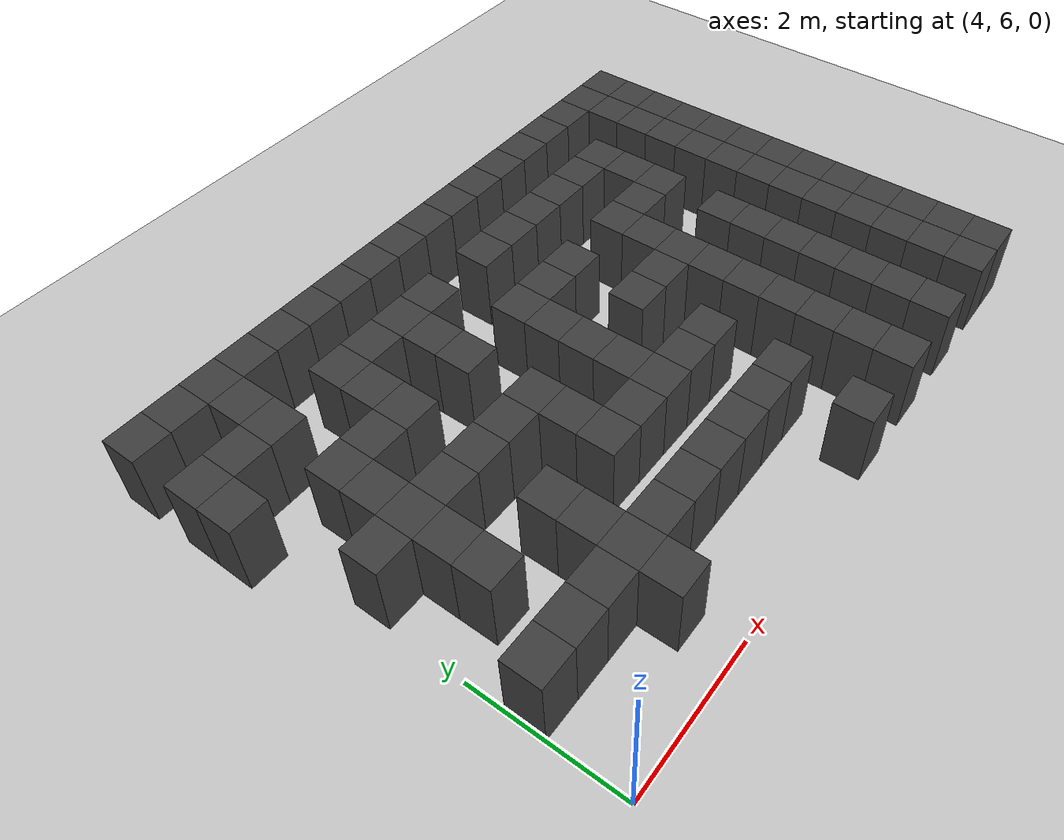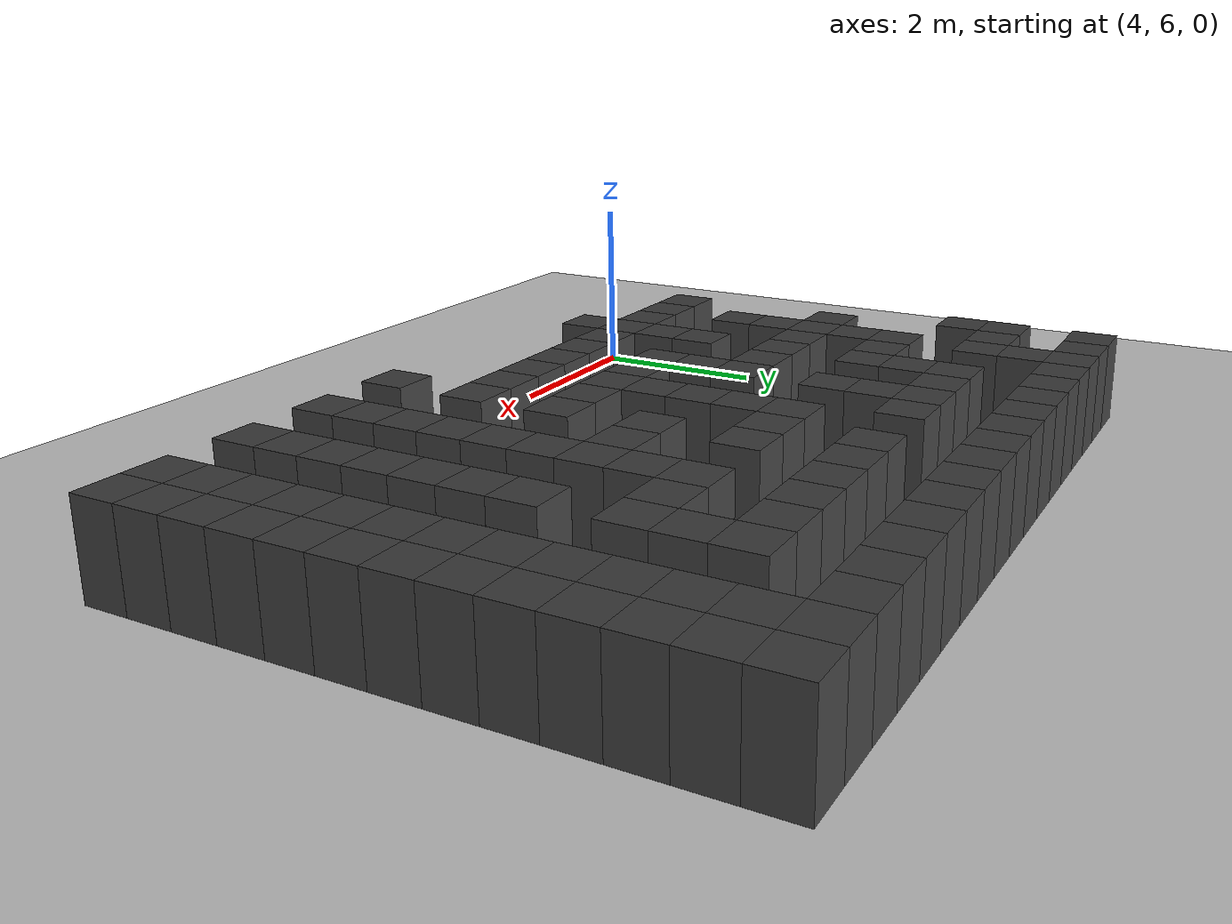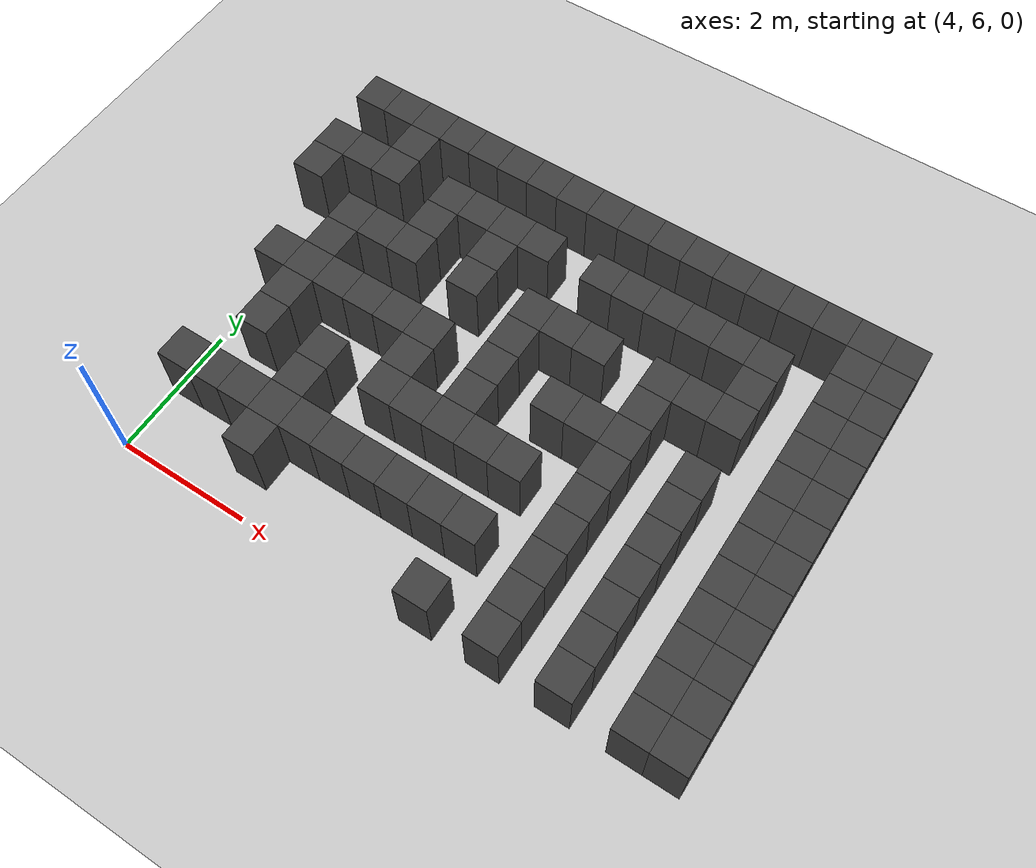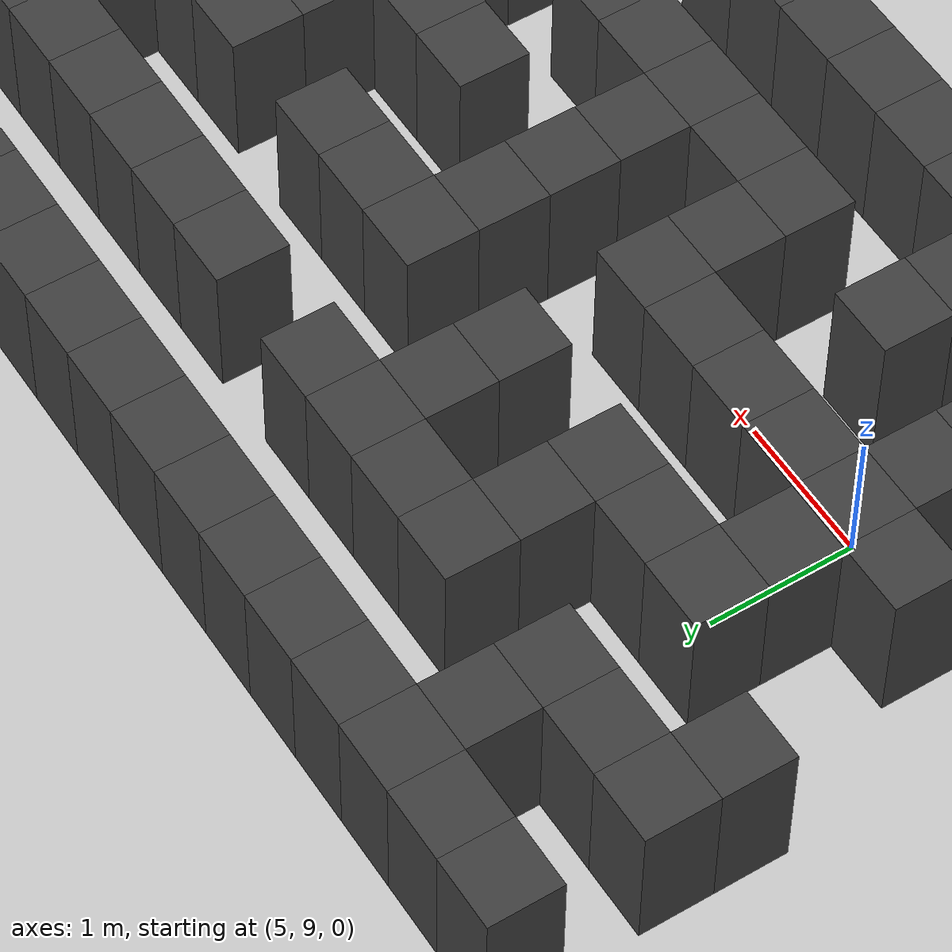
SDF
<sdf version="1.7">
 <world name="map_18814">
  <model name="ground_plane">
   <static>true</static>
   <link name="link">
    <collision name="collision">
     <geometry><plane><normal>0 0 1</normal><size>200 200</size></plane></geometry>
    </collision>
    <visual name="visual">
     <geometry><plane><normal>0 0 1</normal><size>200 200</size></plane></geometry>
     <material><ambient>0.8 0.8 0.8 1</ambient><diffuse>0.8 0.8 0.8 1</diffuse></material>
    </visual>
   </link>
  </model>
  <model name="maze_environment">
   <static>true</static>
   <link name="wall_32">
    <pose>3.750 12.250 0.500 0 0 0</pose>
    <collision name="col"><geometry><box><size>0.5 0.5 1.0</size></box></geometry></collision>
    <visual name="vis">
     <geometry><box><size>0.5 0.5 1.0</size></box></geometry>
     <material><ambient>0.15 0.15 0.15 1</ambient><diffuse>0.25 0.25 0.25 1</diffuse></material>
    </visual>
   </link>
   <link name="wall_33">
    <pose>4.250 12.250 0.500 0 0 0</pose>
    <collision name="col"><geometry><box><size>0.5 0.5 1.0</size></box></geometry></collision>
    <visual name="vis">
     <geometry><box><size>0.5 0.5 1.0</size></box></geometry>
     <material><ambient>0.15 0.15 0.15 1</ambient><diffuse>0.25 0.25 0.25 1</diffuse></material>
    </visual>
   </link>
   <link name="wall_34">
    <pose>4.750 12.250 0.500 0 0 0</pose>
    <collision name="col"><geometry><box><size>0.5 0.5 1.0</size></box></geometry></collision>
    <visual name="vis">
     <geometry><box><size>0.5 0.5 1.0</size></box></geometry>
     <material><ambient>0.15 0.15 0.15 1</ambient><diffuse>0.25 0.25 0.25 1</diffuse></material>
    </visual>
   </link>
   <link name="wall_35">
    <pose>5.250 12.250 0.500 0 0 0</pose>
    <collision name="col"><geometry><box><size>0.5 0.5 1.0</size></box></geometry></collision>
    <visual name="vis">
     <geometry><box><size>0.5 0.5 1.0</size></box></geometry>
     <material><ambient>0.15 0.15 0.15 1</ambient><diffuse>0.25 0.25 0.25 1</diffuse></material>
    </visual>
   </link>
   <link name="wall_36">
    <pose>5.750 12.250 0.500 0 0 0</pose>
    <collision name="col"><geometry><box><size>0.5 0.5 1.0</size></box></geometry></collision>
    <visual name="vis">
     <geometry><box><size>0.5 0.5 1.0</size></box></geometry>
     <material><ambient>0.15 0.15 0.15 1</ambient><diffuse>0.25 0.25 0.25 1</diffuse></material>
    </visual>
   </link>
   <link name="wall_37">
    <pose>6.250 12.250 0.500 0 0 0</pose>
    <collision name="col"><geometry><box><size>0.5 0.5 1.0</size></box></geometry></collision>
    <visual name="vis">
     <geometry><box><size>0.5 0.5 1.0</size></box></geometry>
     <material><ambient>0.15 0.15 0.15 1</ambient><diffuse>0.25 0.25 0.25 1</diffuse></material>
    </visual>
   </link>
   <link name="wall_38">
    <pose>6.750 12.250 0.500 0 0 0</pose>
    <collision name="col"><geometry><box><size>0.5 0.5 1.0</size></box></geometry></collision>
    <visual name="vis">
     <geometry><box><size>0.5 0.5 1.0</size></box></geometry>
     <material><ambient>0.15 0.15 0.15 1</ambient><diffuse>0.25 0.25 0.25 1</diffuse></material>
    </visual>
   </link>
   <link name="wall_39">
    <pose>7.250 12.250 0.500 0 0 0</pose>
    <collision name="col"><geometry><box><size>0.5 0.5 1.0</size></box></geometry></collision>
    <visual name="vis">
     <geometry><box><size>0.5 0.5 1.0</size></box></geometry>
     <material><ambient>0.15 0.15 0.15 1</ambient><diffuse>0.25 0.25 0.25 1</diffuse></material>
    </visual>
   </link>
   <link name="wall_40">
    <pose>7.750 12.250 0.500 0 0 0</pose>
    <collision name="col"><geometry><box><size>0.5 0.5 1.0</size></box></geometry></collision>
    <visual name="vis">
     <geometry><box><size>0.5 0.5 1.0</size></box></geometry>
     <material><ambient>0.15 0.15 0.15 1</ambient><diffuse>0.25 0.25 0.25 1</diffuse></material>
    </visual>
   </link>
   <link name="wall_41">
    <pose>8.250 12.250 0.500 0 0 0</pose>
    <collision name="col"><geometry><box><size>0.5 0.5 1.0</size></box></geometry></collision>
    <visual name="vis">
     <geometry><box><size>0.5 0.5 1.0</size></box></geometry>
     <material><ambient>0.15 0.15 0.15 1</ambient><diffuse>0.25 0.25 0.25 1</diffuse></material>
    </visual>
   </link>
   <link name="wall_42">
    <pose>8.750 12.250 0.500 0 0 0</pose>
    <collision name="col"><geometry><box><size>0.5 0.5 1.0</size></box></geometry></collision>
    <visual name="vis">
     <geometry><box><size>0.5 0.5 1.0</size></box></geometry>
     <material><ambient>0.15 0.15 0.15 1</ambient><diffuse>0.25 0.25 0.25 1</diffuse></material>
    </visual>
   </link>
   <link name="wall_43">
    <pose>9.250 12.250 0.500 0 0 0</pose>
    <collision name="col"><geometry><box><size>0.5 0.5 1.0</size></box></geometry></collision>
    <visual name="vis">
     <geometry><box><size>0.5 0.5 1.0</size></box></geometry>
     <material><ambient>0.15 0.15 0.15 1</ambient><diffuse>0.25 0.25 0.25 1</diffuse></material>
    </visual>
   </link>
   <link name="wall_44">
    <pose>9.750 12.250 0.500 0 0 0</pose>
    <collision name="col"><geometry><box><size>0.5 0.5 1.0</size></box></geometry></collision>
    <visual name="vis">
     <geometry><box><size>0.5 0.5 1.0</size></box></geometry>
     <material><ambient>0.15 0.15 0.15 1</ambient><diffuse>0.25 0.25 0.25 1</diffuse></material>
    </visual>
   </link>
   <link name="wall_45">
    <pose>10.250 12.250 0.500 0 0 0</pose>
    <collision name="col"><geometry><box><size>0.5 0.5 1.0</size></box></geometry></collision>
    <visual name="vis">
     <geometry><box><size>0.5 0.5 1.0</size></box></geometry>
     <material><ambient>0.15 0.15 0.15 1</ambient><diffuse>0.25 0.25 0.25 1</diffuse></material>
    </visual>
   </link>
   <link name="wall_46">
    <pose>10.750 12.250 0.500 0 0 0</pose>
    <collision name="col"><geometry><box><size>0.5 0.5 1.0</size></box></geometry></collision>
    <visual name="vis">
     <geometry><box><size>0.5 0.5 1.0</size></box></geometry>
     <material><ambient>0.15 0.15 0.15 1</ambient><diffuse>0.25 0.25 0.25 1</diffuse></material>
    </visual>
   </link>
   <link name="wall_47">
    <pose>11.250 12.250 0.500 0 0 0</pose>
    <collision name="col"><geometry><box><size>0.5 0.5 1.0</size></box></geometry></collision>
    <visual name="vis">
     <geometry><box><size>0.5 0.5 1.0</size></box></geometry>
     <material><ambient>0.15 0.15 0.15 1</ambient><diffuse>0.25 0.25 0.25 1</diffuse></material>
    </visual>
   </link>
   <link name="wall_48">
    <pose>11.750 12.250 0.500 0 0 0</pose>
    <collision name="col"><geometry><box><size>0.5 0.5 1.0</size></box></geometry></collision>
    <visual name="vis">
     <geometry><box><size>0.5 0.5 1.0</size></box></geometry>
     <material><ambient>0.15 0.15 0.15 1</ambient><diffuse>0.25 0.25 0.25 1</diffuse></material>
    </visual>
   </link>
   <link name="wall_49">
    <pose>12.250 12.250 0.500 0 0 0</pose>
    <collision name="col"><geometry><box><size>0.5 0.5 1.0</size></box></geometry></collision>
    <visual name="vis">
     <geometry><box><size>0.5 0.5 1.0</size></box></geometry>
     <material><ambient>0.15 0.15 0.15 1</ambient><diffuse>0.25 0.25 0.25 1</diffuse></material>
    </visual>
   </link>
   <link name="wall_55">
    <pose>4.750 11.750 0.500 0 0 0</pose>
    <collision name="col"><geometry><box><size>0.5 0.5 1.0</size></box></geometry></collision>
    <visual name="vis">
     <geometry><box><size>0.5 0.5 1.0</size></box></geometry>
     <material><ambient>0.15 0.15 0.15 1</ambient><diffuse>0.25 0.25 0.25 1</diffuse></material>
    </visual>
   </link>
   <link name="wall_56">
    <pose>11.750 11.750 0.500 0 0 0</pose>
    <collision name="col"><geometry><box><size>0.5 0.5 1.0</size></box></geometry></collision>
    <visual name="vis">
     <geometry><box><size>0.5 0.5 1.0</size></box></geometry>
     <material><ambient>0.15 0.15 0.15 1</ambient><diffuse>0.25 0.25 0.25 1</diffuse></material>
    </visual>
   </link>
   <link name="wall_57">
    <pose>12.250 11.750 0.500 0 0 0</pose>
    <collision name="col"><geometry><box><size>0.5 0.5 1.0</size></box></geometry></collision>
    <visual name="vis">
     <geometry><box><size>0.5 0.5 1.0</size></box></geometry>
     <material><ambient>0.15 0.15 0.15 1</ambient><diffuse>0.25 0.25 0.25 1</diffuse></material>
    </visual>
   </link>
   <link name="wall_79">
    <pose>3.750 11.250 0.500 0 0 0</pose>
    <collision name="col"><geometry><box><size>0.5 0.5 1.0</size></box></geometry></collision>
    <visual name="vis">
     <geometry><box><size>0.5 0.5 1.0</size></box></geometry>
     <material><ambient>0.15 0.15 0.15 1</ambient><diffuse>0.25 0.25 0.25 1</diffuse></material>
    </visual>
   </link>
   <link name="wall_80">
    <pose>4.250 11.250 0.500 0 0 0</pose>
    <collision name="col"><geometry><box><size>0.5 0.5 1.0</size></box></geometry></collision>
    <visual name="vis">
     <geometry><box><size>0.5 0.5 1.0</size></box></geometry>
     <material><ambient>0.15 0.15 0.15 1</ambient><diffuse>0.25 0.25 0.25 1</diffuse></material>
    </visual>
   </link>
   <link name="wall_81">
    <pose>4.750 11.250 0.500 0 0 0</pose>
    <collision name="col"><geometry><box><size>0.5 0.5 1.0</size></box></geometry></collision>
    <visual name="vis">
     <geometry><box><size>0.5 0.5 1.0</size></box></geometry>
     <material><ambient>0.15 0.15 0.15 1</ambient><diffuse>0.25 0.25 0.25 1</diffuse></material>
    </visual>
   </link>
   <link name="wall_82">
    <pose>5.750 11.250 0.500 0 0 0</pose>
    <collision name="col"><geometry><box><size>0.5 0.5 1.0</size></box></geometry></collision>
    <visual name="vis">
     <geometry><box><size>0.5 0.5 1.0</size></box></geometry>
     <material><ambient>0.15 0.15 0.15 1</ambient><diffuse>0.25 0.25 0.25 1</diffuse></material>
    </visual>
   </link>
   <link name="wall_83">
    <pose>6.250 11.250 0.500 0 0 0</pose>
    <collision name="col"><geometry><box><size>0.5 0.5 1.0</size></box></geometry></collision>
    <visual name="vis">
     <geometry><box><size>0.5 0.5 1.0</size></box></geometry>
     <material><ambient>0.15 0.15 0.15 1</ambient><diffuse>0.25 0.25 0.25 1</diffuse></material>
    </visual>
   </link>
   <link name="wall_84">
    <pose>6.750 11.250 0.500 0 0 0</pose>
    <collision name="col"><geometry><box><size>0.5 0.5 1.0</size></box></geometry></collision>
    <visual name="vis">
     <geometry><box><size>0.5 0.5 1.0</size></box></geometry>
     <material><ambient>0.15 0.15 0.15 1</ambient><diffuse>0.25 0.25 0.25 1</diffuse></material>
    </visual>
   </link>
   <link name="wall_85">
    <pose>7.250 11.250 0.500 0 0 0</pose>
    <collision name="col"><geometry><box><size>0.5 0.5 1.0</size></box></geometry></collision>
    <visual name="vis">
     <geometry><box><size>0.5 0.5 1.0</size></box></geometry>
     <material><ambient>0.15 0.15 0.15 1</ambient><diffuse>0.25 0.25 0.25 1</diffuse></material>
    </visual>
   </link>
   <link name="wall_86">
    <pose>8.250 11.250 0.500 0 0 0</pose>
    <collision name="col"><geometry><box><size>0.5 0.5 1.0</size></box></geometry></collision>
    <visual name="vis">
     <geometry><box><size>0.5 0.5 1.0</size></box></geometry>
     <material><ambient>0.15 0.15 0.15 1</ambient><diffuse>0.25 0.25 0.25 1</diffuse></material>
    </visual>
   </link>
   <link name="wall_87">
    <pose>8.750 11.250 0.500 0 0 0</pose>
    <collision name="col"><geometry><box><size>0.5 0.5 1.0</size></box></geometry></collision>
    <visual name="vis">
     <geometry><box><size>0.5 0.5 1.0</size></box></geometry>
     <material><ambient>0.15 0.15 0.15 1</ambient><diffuse>0.25 0.25 0.25 1</diffuse></material>
    </visual>
   </link>
   <link name="wall_88">
    <pose>9.250 11.250 0.500 0 0 0</pose>
    <collision name="col"><geometry><box><size>0.5 0.5 1.0</size></box></geometry></collision>
    <visual name="vis">
     <geometry><box><size>0.5 0.5 1.0</size></box></geometry>
     <material><ambient>0.15 0.15 0.15 1</ambient><diffuse>0.25 0.25 0.25 1</diffuse></material>
    </visual>
   </link>
   <link name="wall_89">
    <pose>9.750 11.250 0.500 0 0 0</pose>
    <collision name="col"><geometry><box><size>0.5 0.5 1.0</size></box></geometry></collision>
    <visual name="vis">
     <geometry><box><size>0.5 0.5 1.0</size></box></geometry>
     <material><ambient>0.15 0.15 0.15 1</ambient><diffuse>0.25 0.25 0.25 1</diffuse></material>
    </visual>
   </link>
   <link name="wall_90">
    <pose>10.250 11.250 0.500 0 0 0</pose>
    <collision name="col"><geometry><box><size>0.5 0.5 1.0</size></box></geometry></collision>
    <visual name="vis">
     <geometry><box><size>0.5 0.5 1.0</size></box></geometry>
     <material><ambient>0.15 0.15 0.15 1</ambient><diffuse>0.25 0.25 0.25 1</diffuse></material>
    </visual>
   </link>
   <link name="wall_91">
    <pose>10.750 11.250 0.500 0 0 0</pose>
    <collision name="col"><geometry><box><size>0.5 0.5 1.0</size></box></geometry></collision>
    <visual name="vis">
     <geometry><box><size>0.5 0.5 1.0</size></box></geometry>
     <material><ambient>0.15 0.15 0.15 1</ambient><diffuse>0.25 0.25 0.25 1</diffuse></material>
    </visual>
   </link>
   <link name="wall_92">
    <pose>11.750 11.250 0.500 0 0 0</pose>
    <collision name="col"><geometry><box><size>0.5 0.5 1.0</size></box></geometry></collision>
    <visual name="vis">
     <geometry><box><size>0.5 0.5 1.0</size></box></geometry>
     <material><ambient>0.15 0.15 0.15 1</ambient><diffuse>0.25 0.25 0.25 1</diffuse></material>
    </visual>
   </link>
   <link name="wall_93">
    <pose>12.250 11.250 0.500 0 0 0</pose>
    <collision name="col"><geometry><box><size>0.5 0.5 1.0</size></box></geometry></collision>
    <visual name="vis">
     <geometry><box><size>0.5 0.5 1.0</size></box></geometry>
     <material><ambient>0.15 0.15 0.15 1</ambient><diffuse>0.25 0.25 0.25 1</diffuse></material>
    </visual>
   </link>
   <link name="wall_103">
    <pose>3.750 10.750 0.500 0 0 0</pose>
    <collision name="col"><geometry><box><size>0.5 0.5 1.0</size></box></geometry></collision>
    <visual name="vis">
     <geometry><box><size>0.5 0.5 1.0</size></box></geometry>
     <material><ambient>0.15 0.15 0.15 1</ambient><diffuse>0.25 0.25 0.25 1</diffuse></material>
    </visual>
   </link>
   <link name="wall_104">
    <pose>5.750 10.750 0.500 0 0 0</pose>
    <collision name="col"><geometry><box><size>0.5 0.5 1.0</size></box></geometry></collision>
    <visual name="vis">
     <geometry><box><size>0.5 0.5 1.0</size></box></geometry>
     <material><ambient>0.15 0.15 0.15 1</ambient><diffuse>0.25 0.25 0.25 1</diffuse></material>
    </visual>
   </link>
   <link name="wall_105">
    <pose>6.750 10.750 0.500 0 0 0</pose>
    <collision name="col"><geometry><box><size>0.5 0.5 1.0</size></box></geometry></collision>
    <visual name="vis">
     <geometry><box><size>0.5 0.5 1.0</size></box></geometry>
     <material><ambient>0.15 0.15 0.15 1</ambient><diffuse>0.25 0.25 0.25 1</diffuse></material>
    </visual>
   </link>
   <link name="wall_106">
    <pose>10.750 10.750 0.500 0 0 0</pose>
    <collision name="col"><geometry><box><size>0.5 0.5 1.0</size></box></geometry></collision>
    <visual name="vis">
     <geometry><box><size>0.5 0.5 1.0</size></box></geometry>
     <material><ambient>0.15 0.15 0.15 1</ambient><diffuse>0.25 0.25 0.25 1</diffuse></material>
    </visual>
   </link>
   <link name="wall_107">
    <pose>11.750 10.750 0.500 0 0 0</pose>
    <collision name="col"><geometry><box><size>0.5 0.5 1.0</size></box></geometry></collision>
    <visual name="vis">
     <geometry><box><size>0.5 0.5 1.0</size></box></geometry>
     <material><ambient>0.15 0.15 0.15 1</ambient><diffuse>0.25 0.25 0.25 1</diffuse></material>
    </visual>
   </link>
   <link name="wall_108">
    <pose>12.250 10.750 0.500 0 0 0</pose>
    <collision name="col"><geometry><box><size>0.5 0.5 1.0</size></box></geometry></collision>
    <visual name="vis">
     <geometry><box><size>0.5 0.5 1.0</size></box></geometry>
     <material><ambient>0.15 0.15 0.15 1</ambient><diffuse>0.25 0.25 0.25 1</diffuse></material>
    </visual>
   </link>
   <link name="wall_136">
    <pose>4.750 10.250 0.500 0 0 0</pose>
    <collision name="col"><geometry><box><size>0.5 0.5 1.0</size></box></geometry></collision>
    <visual name="vis">
     <geometry><box><size>0.5 0.5 1.0</size></box></geometry>
     <material><ambient>0.15 0.15 0.15 1</ambient><diffuse>0.25 0.25 0.25 1</diffuse></material>
    </visual>
   </link>
   <link name="wall_137">
    <pose>5.250 10.250 0.500 0 0 0</pose>
    <collision name="col"><geometry><box><size>0.5 0.5 1.0</size></box></geometry></collision>
    <visual name="vis">
     <geometry><box><size>0.5 0.5 1.0</size></box></geometry>
     <material><ambient>0.15 0.15 0.15 1</ambient><diffuse>0.25 0.25 0.25 1</diffuse></material>
    </visual>
   </link>
   <link name="wall_138">
    <pose>5.750 10.250 0.500 0 0 0</pose>
    <collision name="col"><geometry><box><size>0.5 0.5 1.0</size></box></geometry></collision>
    <visual name="vis">
     <geometry><box><size>0.5 0.5 1.0</size></box></geometry>
     <material><ambient>0.15 0.15 0.15 1</ambient><diffuse>0.25 0.25 0.25 1</diffuse></material>
    </visual>
   </link>
   <link name="wall_139">
    <pose>6.750 10.250 0.500 0 0 0</pose>
    <collision name="col"><geometry><box><size>0.5 0.5 1.0</size></box></geometry></collision>
    <visual name="vis">
     <geometry><box><size>0.5 0.5 1.0</size></box></geometry>
     <material><ambient>0.15 0.15 0.15 1</ambient><diffuse>0.25 0.25 0.25 1</diffuse></material>
    </visual>
   </link>
   <link name="wall_140">
    <pose>7.750 10.250 0.500 0 0 0</pose>
    <collision name="col"><geometry><box><size>0.5 0.5 1.0</size></box></geometry></collision>
    <visual name="vis">
     <geometry><box><size>0.5 0.5 1.0</size></box></geometry>
     <material><ambient>0.15 0.15 0.15 1</ambient><diffuse>0.25 0.25 0.25 1</diffuse></material>
    </visual>
   </link>
   <link name="wall_141">
    <pose>8.250 10.250 0.500 0 0 0</pose>
    <collision name="col"><geometry><box><size>0.5 0.5 1.0</size></box></geometry></collision>
    <visual name="vis">
     <geometry><box><size>0.5 0.5 1.0</size></box></geometry>
     <material><ambient>0.15 0.15 0.15 1</ambient><diffuse>0.25 0.25 0.25 1</diffuse></material>
    </visual>
   </link>
   <link name="wall_142">
    <pose>8.750 10.250 0.500 0 0 0</pose>
    <collision name="col"><geometry><box><size>0.5 0.5 1.0</size></box></geometry></collision>
    <visual name="vis">
     <geometry><box><size>0.5 0.5 1.0</size></box></geometry>
     <material><ambient>0.15 0.15 0.15 1</ambient><diffuse>0.25 0.25 0.25 1</diffuse></material>
    </visual>
   </link>
   <link name="wall_143">
    <pose>9.750 10.250 0.500 0 0 0</pose>
    <collision name="col"><geometry><box><size>0.5 0.5 1.0</size></box></geometry></collision>
    <visual name="vis">
     <geometry><box><size>0.5 0.5 1.0</size></box></geometry>
     <material><ambient>0.15 0.15 0.15 1</ambient><diffuse>0.25 0.25 0.25 1</diffuse></material>
    </visual>
   </link>
   <link name="wall_144">
    <pose>10.250 10.250 0.500 0 0 0</pose>
    <collision name="col"><geometry><box><size>0.5 0.5 1.0</size></box></geometry></collision>
    <visual name="vis">
     <geometry><box><size>0.5 0.5 1.0</size></box></geometry>
     <material><ambient>0.15 0.15 0.15 1</ambient><diffuse>0.25 0.25 0.25 1</diffuse></material>
    </visual>
   </link>
   <link name="wall_145">
    <pose>10.750 10.250 0.500 0 0 0</pose>
    <collision name="col"><geometry><box><size>0.5 0.5 1.0</size></box></geometry></collision>
    <visual name="vis">
     <geometry><box><size>0.5 0.5 1.0</size></box></geometry>
     <material><ambient>0.15 0.15 0.15 1</ambient><diffuse>0.25 0.25 0.25 1</diffuse></material>
    </visual>
   </link>
   <link name="wall_146">
    <pose>11.750 10.250 0.500 0 0 0</pose>
    <collision name="col"><geometry><box><size>0.5 0.5 1.0</size></box></geometry></collision>
    <visual name="vis">
     <geometry><box><size>0.5 0.5 1.0</size></box></geometry>
     <material><ambient>0.15 0.15 0.15 1</ambient><diffuse>0.25 0.25 0.25 1</diffuse></material>
    </visual>
   </link>
   <link name="wall_147">
    <pose>12.250 10.250 0.500 0 0 0</pose>
    <collision name="col"><geometry><box><size>0.5 0.5 1.0</size></box></geometry></collision>
    <visual name="vis">
     <geometry><box><size>0.5 0.5 1.0</size></box></geometry>
     <material><ambient>0.15 0.15 0.15 1</ambient><diffuse>0.25 0.25 0.25 1</diffuse></material>
    </visual>
   </link>
   <link name="wall_155">
    <pose>4.750 9.750 0.500 0 0 0</pose>
    <collision name="col"><geometry><box><size>0.5 0.5 1.0</size></box></geometry></collision>
    <visual name="vis">
     <geometry><box><size>0.5 0.5 1.0</size></box></geometry>
     <material><ambient>0.15 0.15 0.15 1</ambient><diffuse>0.25 0.25 0.25 1</diffuse></material>
    </visual>
   </link>
   <link name="wall_156">
    <pose>7.750 9.750 0.500 0 0 0</pose>
    <collision name="col"><geometry><box><size>0.5 0.5 1.0</size></box></geometry></collision>
    <visual name="vis">
     <geometry><box><size>0.5 0.5 1.0</size></box></geometry>
     <material><ambient>0.15 0.15 0.15 1</ambient><diffuse>0.25 0.25 0.25 1</diffuse></material>
    </visual>
   </link>
   <link name="wall_157">
    <pose>9.750 9.750 0.500 0 0 0</pose>
    <collision name="col"><geometry><box><size>0.5 0.5 1.0</size></box></geometry></collision>
    <visual name="vis">
     <geometry><box><size>0.5 0.5 1.0</size></box></geometry>
     <material><ambient>0.15 0.15 0.15 1</ambient><diffuse>0.25 0.25 0.25 1</diffuse></material>
    </visual>
   </link>
   <link name="wall_158">
    <pose>11.750 9.750 0.500 0 0 0</pose>
    <collision name="col"><geometry><box><size>0.5 0.5 1.0</size></box></geometry></collision>
    <visual name="vis">
     <geometry><box><size>0.5 0.5 1.0</size></box></geometry>
     <material><ambient>0.15 0.15 0.15 1</ambient><diffuse>0.25 0.25 0.25 1</diffuse></material>
    </visual>
   </link>
   <link name="wall_159">
    <pose>12.250 9.750 0.500 0 0 0</pose>
    <collision name="col"><geometry><box><size>0.5 0.5 1.0</size></box></geometry></collision>
    <visual name="vis">
     <geometry><box><size>0.5 0.5 1.0</size></box></geometry>
     <material><ambient>0.15 0.15 0.15 1</ambient><diffuse>0.25 0.25 0.25 1</diffuse></material>
    </visual>
   </link>
   <link name="wall_186">
    <pose>4.250 9.250 0.500 0 0 0</pose>
    <collision name="col"><geometry><box><size>0.5 0.5 1.0</size></box></geometry></collision>
    <visual name="vis">
     <geometry><box><size>0.5 0.5 1.0</size></box></geometry>
     <material><ambient>0.15 0.15 0.15 1</ambient><diffuse>0.25 0.25 0.25 1</diffuse></material>
    </visual>
   </link>
   <link name="wall_187">
    <pose>4.750 9.250 0.500 0 0 0</pose>
    <collision name="col"><geometry><box><size>0.5 0.5 1.0</size></box></geometry></collision>
    <visual name="vis">
     <geometry><box><size>0.5 0.5 1.0</size></box></geometry>
     <material><ambient>0.15 0.15 0.15 1</ambient><diffuse>0.25 0.25 0.25 1</diffuse></material>
    </visual>
   </link>
   <link name="wall_188">
    <pose>5.250 9.250 0.500 0 0 0</pose>
    <collision name="col"><geometry><box><size>0.5 0.5 1.0</size></box></geometry></collision>
    <visual name="vis">
     <geometry><box><size>0.5 0.5 1.0</size></box></geometry>
     <material><ambient>0.15 0.15 0.15 1</ambient><diffuse>0.25 0.25 0.25 1</diffuse></material>
    </visual>
   </link>
   <link name="wall_189">
    <pose>5.750 9.250 0.500 0 0 0</pose>
    <collision name="col"><geometry><box><size>0.5 0.5 1.0</size></box></geometry></collision>
    <visual name="vis">
     <geometry><box><size>0.5 0.5 1.0</size></box></geometry>
     <material><ambient>0.15 0.15 0.15 1</ambient><diffuse>0.25 0.25 0.25 1</diffuse></material>
    </visual>
   </link>
   <link name="wall_190">
    <pose>6.250 9.250 0.500 0 0 0</pose>
    <collision name="col"><geometry><box><size>0.5 0.5 1.0</size></box></geometry></collision>
    <visual name="vis">
     <geometry><box><size>0.5 0.5 1.0</size></box></geometry>
     <material><ambient>0.15 0.15 0.15 1</ambient><diffuse>0.25 0.25 0.25 1</diffuse></material>
    </visual>
   </link>
   <link name="wall_191">
    <pose>6.750 9.250 0.500 0 0 0</pose>
    <collision name="col"><geometry><box><size>0.5 0.5 1.0</size></box></geometry></collision>
    <visual name="vis">
     <geometry><box><size>0.5 0.5 1.0</size></box></geometry>
     <material><ambient>0.15 0.15 0.15 1</ambient><diffuse>0.25 0.25 0.25 1</diffuse></material>
    </visual>
   </link>
   <link name="wall_192">
    <pose>7.750 9.250 0.500 0 0 0</pose>
    <collision name="col"><geometry><box><size>0.5 0.5 1.0</size></box></geometry></collision>
    <visual name="vis">
     <geometry><box><size>0.5 0.5 1.0</size></box></geometry>
     <material><ambient>0.15 0.15 0.15 1</ambient><diffuse>0.25 0.25 0.25 1</diffuse></material>
    </visual>
   </link>
   <link name="wall_193">
    <pose>8.750 9.250 0.500 0 0 0</pose>
    <collision name="col"><geometry><box><size>0.5 0.5 1.0</size></box></geometry></collision>
    <visual name="vis">
     <geometry><box><size>0.5 0.5 1.0</size></box></geometry>
     <material><ambient>0.15 0.15 0.15 1</ambient><diffuse>0.25 0.25 0.25 1</diffuse></material>
    </visual>
   </link>
   <link name="wall_194">
    <pose>9.250 9.250 0.500 0 0 0</pose>
    <collision name="col"><geometry><box><size>0.5 0.5 1.0</size></box></geometry></collision>
    <visual name="vis">
     <geometry><box><size>0.5 0.5 1.0</size></box></geometry>
     <material><ambient>0.15 0.15 0.15 1</ambient><diffuse>0.25 0.25 0.25 1</diffuse></material>
    </visual>
   </link>
   <link name="wall_195">
    <pose>9.750 9.250 0.500 0 0 0</pose>
    <collision name="col"><geometry><box><size>0.5 0.5 1.0</size></box></geometry></collision>
    <visual name="vis">
     <geometry><box><size>0.5 0.5 1.0</size></box></geometry>
     <material><ambient>0.15 0.15 0.15 1</ambient><diffuse>0.25 0.25 0.25 1</diffuse></material>
    </visual>
   </link>
   <link name="wall_196">
    <pose>10.750 9.250 0.500 0 0 0</pose>
    <collision name="col"><geometry><box><size>0.5 0.5 1.0</size></box></geometry></collision>
    <visual name="vis">
     <geometry><box><size>0.5 0.5 1.0</size></box></geometry>
     <material><ambient>0.15 0.15 0.15 1</ambient><diffuse>0.25 0.25 0.25 1</diffuse></material>
    </visual>
   </link>
   <link name="wall_197">
    <pose>11.750 9.250 0.500 0 0 0</pose>
    <collision name="col"><geometry><box><size>0.5 0.5 1.0</size></box></geometry></collision>
    <visual name="vis">
     <geometry><box><size>0.5 0.5 1.0</size></box></geometry>
     <material><ambient>0.15 0.15 0.15 1</ambient><diffuse>0.25 0.25 0.25 1</diffuse></material>
    </visual>
   </link>
   <link name="wall_198">
    <pose>12.250 9.250 0.500 0 0 0</pose>
    <collision name="col"><geometry><box><size>0.5 0.5 1.0</size></box></geometry></collision>
    <visual name="vis">
     <geometry><box><size>0.5 0.5 1.0</size></box></geometry>
     <material><ambient>0.15 0.15 0.15 1</ambient><diffuse>0.25 0.25 0.25 1</diffuse></material>
    </visual>
   </link>
   <link name="wall_205">
    <pose>4.750 8.750 0.500 0 0 0</pose>
    <collision name="col"><geometry><box><size>0.5 0.5 1.0</size></box></geometry></collision>
    <visual name="vis">
     <geometry><box><size>0.5 0.5 1.0</size></box></geometry>
     <material><ambient>0.15 0.15 0.15 1</ambient><diffuse>0.25 0.25 0.25 1</diffuse></material>
    </visual>
   </link>
   <link name="wall_206">
    <pose>6.750 8.750 0.500 0 0 0</pose>
    <collision name="col"><geometry><box><size>0.5 0.5 1.0</size></box></geometry></collision>
    <visual name="vis">
     <geometry><box><size>0.5 0.5 1.0</size></box></geometry>
     <material><ambient>0.15 0.15 0.15 1</ambient><diffuse>0.25 0.25 0.25 1</diffuse></material>
    </visual>
   </link>
   <link name="wall_207">
    <pose>7.750 8.750 0.500 0 0 0</pose>
    <collision name="col"><geometry><box><size>0.5 0.5 1.0</size></box></geometry></collision>
    <visual name="vis">
     <geometry><box><size>0.5 0.5 1.0</size></box></geometry>
     <material><ambient>0.15 0.15 0.15 1</ambient><diffuse>0.25 0.25 0.25 1</diffuse></material>
    </visual>
   </link>
   <link name="wall_208">
    <pose>9.750 8.750 0.500 0 0 0</pose>
    <collision name="col"><geometry><box><size>0.5 0.5 1.0</size></box></geometry></collision>
    <visual name="vis">
     <geometry><box><size>0.5 0.5 1.0</size></box></geometry>
     <material><ambient>0.15 0.15 0.15 1</ambient><diffuse>0.25 0.25 0.25 1</diffuse></material>
    </visual>
   </link>
   <link name="wall_209">
    <pose>10.750 8.750 0.500 0 0 0</pose>
    <collision name="col"><geometry><box><size>0.5 0.5 1.0</size></box></geometry></collision>
    <visual name="vis">
     <geometry><box><size>0.5 0.5 1.0</size></box></geometry>
     <material><ambient>0.15 0.15 0.15 1</ambient><diffuse>0.25 0.25 0.25 1</diffuse></material>
    </visual>
   </link>
   <link name="wall_210">
    <pose>11.750 8.750 0.500 0 0 0</pose>
    <collision name="col"><geometry><box><size>0.5 0.5 1.0</size></box></geometry></collision>
    <visual name="vis">
     <geometry><box><size>0.5 0.5 1.0</size></box></geometry>
     <material><ambient>0.15 0.15 0.15 1</ambient><diffuse>0.25 0.25 0.25 1</diffuse></material>
    </visual>
   </link>
   <link name="wall_211">
    <pose>12.250 8.750 0.500 0 0 0</pose>
    <collision name="col"><geometry><box><size>0.5 0.5 1.0</size></box></geometry></collision>
    <visual name="vis">
     <geometry><box><size>0.5 0.5 1.0</size></box></geometry>
     <material><ambient>0.15 0.15 0.15 1</ambient><diffuse>0.25 0.25 0.25 1</diffuse></material>
    </visual>
   </link>
   <link name="wall_235">
    <pose>4.750 8.250 0.500 0 0 0</pose>
    <collision name="col"><geometry><box><size>0.5 0.5 1.0</size></box></geometry></collision>
    <visual name="vis">
     <geometry><box><size>0.5 0.5 1.0</size></box></geometry>
     <material><ambient>0.15 0.15 0.15 1</ambient><diffuse>0.25 0.25 0.25 1</diffuse></material>
    </visual>
   </link>
   <link name="wall_236">
    <pose>5.750 8.250 0.500 0 0 0</pose>
    <collision name="col"><geometry><box><size>0.5 0.5 1.0</size></box></geometry></collision>
    <visual name="vis">
     <geometry><box><size>0.5 0.5 1.0</size></box></geometry>
     <material><ambient>0.15 0.15 0.15 1</ambient><diffuse>0.25 0.25 0.25 1</diffuse></material>
    </visual>
   </link>
   <link name="wall_237">
    <pose>6.750 8.250 0.500 0 0 0</pose>
    <collision name="col"><geometry><box><size>0.5 0.5 1.0</size></box></geometry></collision>
    <visual name="vis">
     <geometry><box><size>0.5 0.5 1.0</size></box></geometry>
     <material><ambient>0.15 0.15 0.15 1</ambient><diffuse>0.25 0.25 0.25 1</diffuse></material>
    </visual>
   </link>
   <link name="wall_238">
    <pose>7.250 8.250 0.500 0 0 0</pose>
    <collision name="col"><geometry><box><size>0.5 0.5 1.0</size></box></geometry></collision>
    <visual name="vis">
     <geometry><box><size>0.5 0.5 1.0</size></box></geometry>
     <material><ambient>0.15 0.15 0.15 1</ambient><diffuse>0.25 0.25 0.25 1</diffuse></material>
    </visual>
   </link>
   <link name="wall_239">
    <pose>7.750 8.250 0.500 0 0 0</pose>
    <collision name="col"><geometry><box><size>0.5 0.5 1.0</size></box></geometry></collision>
    <visual name="vis">
     <geometry><box><size>0.5 0.5 1.0</size></box></geometry>
     <material><ambient>0.15 0.15 0.15 1</ambient><diffuse>0.25 0.25 0.25 1</diffuse></material>
    </visual>
   </link>
   <link name="wall_240">
    <pose>8.250 8.250 0.500 0 0 0</pose>
    <collision name="col"><geometry><box><size>0.5 0.5 1.0</size></box></geometry></collision>
    <visual name="vis">
     <geometry><box><size>0.5 0.5 1.0</size></box></geometry>
     <material><ambient>0.15 0.15 0.15 1</ambient><diffuse>0.25 0.25 0.25 1</diffuse></material>
    </visual>
   </link>
   <link name="wall_241">
    <pose>8.750 8.250 0.500 0 0 0</pose>
    <collision name="col"><geometry><box><size>0.5 0.5 1.0</size></box></geometry></collision>
    <visual name="vis">
     <geometry><box><size>0.5 0.5 1.0</size></box></geometry>
     <material><ambient>0.15 0.15 0.15 1</ambient><diffuse>0.25 0.25 0.25 1</diffuse></material>
    </visual>
   </link>
   <link name="wall_242">
    <pose>9.750 8.250 0.500 0 0 0</pose>
    <collision name="col"><geometry><box><size>0.5 0.5 1.0</size></box></geometry></collision>
    <visual name="vis">
     <geometry><box><size>0.5 0.5 1.0</size></box></geometry>
     <material><ambient>0.15 0.15 0.15 1</ambient><diffuse>0.25 0.25 0.25 1</diffuse></material>
    </visual>
   </link>
   <link name="wall_243">
    <pose>10.750 8.250 0.500 0 0 0</pose>
    <collision name="col"><geometry><box><size>0.5 0.5 1.0</size></box></geometry></collision>
    <visual name="vis">
     <geometry><box><size>0.5 0.5 1.0</size></box></geometry>
     <material><ambient>0.15 0.15 0.15 1</ambient><diffuse>0.25 0.25 0.25 1</diffuse></material>
    </visual>
   </link>
   <link name="wall_244">
    <pose>11.750 8.250 0.500 0 0 0</pose>
    <collision name="col"><geometry><box><size>0.5 0.5 1.0</size></box></geometry></collision>
    <visual name="vis">
     <geometry><box><size>0.5 0.5 1.0</size></box></geometry>
     <material><ambient>0.15 0.15 0.15 1</ambient><diffuse>0.25 0.25 0.25 1</diffuse></material>
    </visual>
   </link>
   <link name="wall_245">
    <pose>12.250 8.250 0.500 0 0 0</pose>
    <collision name="col"><geometry><box><size>0.5 0.5 1.0</size></box></geometry></collision>
    <visual name="vis">
     <geometry><box><size>0.5 0.5 1.0</size></box></geometry>
     <material><ambient>0.15 0.15 0.15 1</ambient><diffuse>0.25 0.25 0.25 1</diffuse></material>
    </visual>
   </link>
   <link name="wall_256">
    <pose>5.750 7.750 0.500 0 0 0</pose>
    <collision name="col"><geometry><box><size>0.5 0.5 1.0</size></box></geometry></collision>
    <visual name="vis">
     <geometry><box><size>0.5 0.5 1.0</size></box></geometry>
     <material><ambient>0.15 0.15 0.15 1</ambient><diffuse>0.25 0.25 0.25 1</diffuse></material>
    </visual>
   </link>
   <link name="wall_257">
    <pose>9.750 7.750 0.500 0 0 0</pose>
    <collision name="col"><geometry><box><size>0.5 0.5 1.0</size></box></geometry></collision>
    <visual name="vis">
     <geometry><box><size>0.5 0.5 1.0</size></box></geometry>
     <material><ambient>0.15 0.15 0.15 1</ambient><diffuse>0.25 0.25 0.25 1</diffuse></material>
    </visual>
   </link>
   <link name="wall_258">
    <pose>10.750 7.750 0.500 0 0 0</pose>
    <collision name="col"><geometry><box><size>0.5 0.5 1.0</size></box></geometry></collision>
    <visual name="vis">
     <geometry><box><size>0.5 0.5 1.0</size></box></geometry>
     <material><ambient>0.15 0.15 0.15 1</ambient><diffuse>0.25 0.25 0.25 1</diffuse></material>
    </visual>
   </link>
   <link name="wall_259">
    <pose>11.750 7.750 0.500 0 0 0</pose>
    <collision name="col"><geometry><box><size>0.5 0.5 1.0</size></box></geometry></collision>
    <visual name="vis">
     <geometry><box><size>0.5 0.5 1.0</size></box></geometry>
     <material><ambient>0.15 0.15 0.15 1</ambient><diffuse>0.25 0.25 0.25 1</diffuse></material>
    </visual>
   </link>
   <link name="wall_260">
    <pose>12.250 7.750 0.500 0 0 0</pose>
    <collision name="col"><geometry><box><size>0.5 0.5 1.0</size></box></geometry></collision>
    <visual name="vis">
     <geometry><box><size>0.5 0.5 1.0</size></box></geometry>
     <material><ambient>0.15 0.15 0.15 1</ambient><diffuse>0.25 0.25 0.25 1</diffuse></material>
    </visual>
   </link>
   <link name="wall_281">
    <pose>4.250 7.250 0.500 0 0 0</pose>
    <collision name="col"><geometry><box><size>0.5 0.5 1.0</size></box></geometry></collision>
    <visual name="vis">
     <geometry><box><size>0.5 0.5 1.0</size></box></geometry>
     <material><ambient>0.15 0.15 0.15 1</ambient><diffuse>0.25 0.25 0.25 1</diffuse></material>
    </visual>
   </link>
   <link name="wall_282">
    <pose>4.750 7.250 0.500 0 0 0</pose>
    <collision name="col"><geometry><box><size>0.5 0.5 1.0</size></box></geometry></collision>
    <visual name="vis">
     <geometry><box><size>0.5 0.5 1.0</size></box></geometry>
     <material><ambient>0.15 0.15 0.15 1</ambient><diffuse>0.25 0.25 0.25 1</diffuse></material>
    </visual>
   </link>
   <link name="wall_283">
    <pose>5.250 7.250 0.500 0 0 0</pose>
    <collision name="col"><geometry><box><size>0.5 0.5 1.0</size></box></geometry></collision>
    <visual name="vis">
     <geometry><box><size>0.5 0.5 1.0</size></box></geometry>
     <material><ambient>0.15 0.15 0.15 1</ambient><diffuse>0.25 0.25 0.25 1</diffuse></material>
    </visual>
   </link>
   <link name="wall_284">
    <pose>5.750 7.250 0.500 0 0 0</pose>
    <collision name="col"><geometry><box><size>0.5 0.5 1.0</size></box></geometry></collision>
    <visual name="vis">
     <geometry><box><size>0.5 0.5 1.0</size></box></geometry>
     <material><ambient>0.15 0.15 0.15 1</ambient><diffuse>0.25 0.25 0.25 1</diffuse></material>
    </visual>
   </link>
   <link name="wall_285">
    <pose>6.250 7.250 0.500 0 0 0</pose>
    <collision name="col"><geometry><box><size>0.5 0.5 1.0</size></box></geometry></collision>
    <visual name="vis">
     <geometry><box><size>0.5 0.5 1.0</size></box></geometry>
     <material><ambient>0.15 0.15 0.15 1</ambient><diffuse>0.25 0.25 0.25 1</diffuse></material>
    </visual>
   </link>
   <link name="wall_286">
    <pose>6.750 7.250 0.500 0 0 0</pose>
    <collision name="col"><geometry><box><size>0.5 0.5 1.0</size></box></geometry></collision>
    <visual name="vis">
     <geometry><box><size>0.5 0.5 1.0</size></box></geometry>
     <material><ambient>0.15 0.15 0.15 1</ambient><diffuse>0.25 0.25 0.25 1</diffuse></material>
    </visual>
   </link>
   <link name="wall_287">
    <pose>7.250 7.250 0.500 0 0 0</pose>
    <collision name="col"><geometry><box><size>0.5 0.5 1.0</size></box></geometry></collision>
    <visual name="vis">
     <geometry><box><size>0.5 0.5 1.0</size></box></geometry>
     <material><ambient>0.15 0.15 0.15 1</ambient><diffuse>0.25 0.25 0.25 1</diffuse></material>
    </visual>
   </link>
   <link name="wall_288">
    <pose>7.750 7.250 0.500 0 0 0</pose>
    <collision name="col"><geometry><box><size>0.5 0.5 1.0</size></box></geometry></collision>
    <visual name="vis">
     <geometry><box><size>0.5 0.5 1.0</size></box></geometry>
     <material><ambient>0.15 0.15 0.15 1</ambient><diffuse>0.25 0.25 0.25 1</diffuse></material>
    </visual>
   </link>
   <link name="wall_289">
    <pose>8.250 7.250 0.500 0 0 0</pose>
    <collision name="col"><geometry><box><size>0.5 0.5 1.0</size></box></geometry></collision>
    <visual name="vis">
     <geometry><box><size>0.5 0.5 1.0</size></box></geometry>
     <material><ambient>0.15 0.15 0.15 1</ambient><diffuse>0.25 0.25 0.25 1</diffuse></material>
    </visual>
   </link>
   <link name="wall_290">
    <pose>8.750 7.250 0.500 0 0 0</pose>
    <collision name="col"><geometry><box><size>0.5 0.5 1.0</size></box></geometry></collision>
    <visual name="vis">
     <geometry><box><size>0.5 0.5 1.0</size></box></geometry>
     <material><ambient>0.15 0.15 0.15 1</ambient><diffuse>0.25 0.25 0.25 1</diffuse></material>
    </visual>
   </link>
   <link name="wall_291">
    <pose>9.750 7.250 0.500 0 0 0</pose>
    <collision name="col"><geometry><box><size>0.5 0.5 1.0</size></box></geometry></collision>
    <visual name="vis">
     <geometry><box><size>0.5 0.5 1.0</size></box></geometry>
     <material><ambient>0.15 0.15 0.15 1</ambient><diffuse>0.25 0.25 0.25 1</diffuse></material>
    </visual>
   </link>
   <link name="wall_292">
    <pose>10.750 7.250 0.500 0 0 0</pose>
    <collision name="col"><geometry><box><size>0.5 0.5 1.0</size></box></geometry></collision>
    <visual name="vis">
     <geometry><box><size>0.5 0.5 1.0</size></box></geometry>
     <material><ambient>0.15 0.15 0.15 1</ambient><diffuse>0.25 0.25 0.25 1</diffuse></material>
    </visual>
   </link>
   <link name="wall_293">
    <pose>11.750 7.250 0.500 0 0 0</pose>
    <collision name="col"><geometry><box><size>0.5 0.5 1.0</size></box></geometry></collision>
    <visual name="vis">
     <geometry><box><size>0.5 0.5 1.0</size></box></geometry>
     <material><ambient>0.15 0.15 0.15 1</ambient><diffuse>0.25 0.25 0.25 1</diffuse></material>
    </visual>
   </link>
   <link name="wall_294">
    <pose>12.250 7.250 0.500 0 0 0</pose>
    <collision name="col"><geometry><box><size>0.5 0.5 1.0</size></box></geometry></collision>
    <visual name="vis">
     <geometry><box><size>0.5 0.5 1.0</size></box></geometry>
     <material><ambient>0.15 0.15 0.15 1</ambient><diffuse>0.25 0.25 0.25 1</diffuse></material>
    </visual>
   </link>
   <link name="wall_302">
    <pose>5.750 6.750 0.500 0 0 0</pose>
    <collision name="col"><geometry><box><size>0.5 0.5 1.0</size></box></geometry></collision>
    <visual name="vis">
     <geometry><box><size>0.5 0.5 1.0</size></box></geometry>
     <material><ambient>0.15 0.15 0.15 1</ambient><diffuse>0.25 0.25 0.25 1</diffuse></material>
    </visual>
   </link>
   <link name="wall_303">
    <pose>9.750 6.750 0.500 0 0 0</pose>
    <collision name="col"><geometry><box><size>0.5 0.5 1.0</size></box></geometry></collision>
    <visual name="vis">
     <geometry><box><size>0.5 0.5 1.0</size></box></geometry>
     <material><ambient>0.15 0.15 0.15 1</ambient><diffuse>0.25 0.25 0.25 1</diffuse></material>
    </visual>
   </link>
   <link name="wall_304">
    <pose>10.750 6.750 0.500 0 0 0</pose>
    <collision name="col"><geometry><box><size>0.5 0.5 1.0</size></box></geometry></collision>
    <visual name="vis">
     <geometry><box><size>0.5 0.5 1.0</size></box></geometry>
     <material><ambient>0.15 0.15 0.15 1</ambient><diffuse>0.25 0.25 0.25 1</diffuse></material>
    </visual>
   </link>
   <link name="wall_305">
    <pose>11.750 6.750 0.500 0 0 0</pose>
    <collision name="col"><geometry><box><size>0.5 0.5 1.0</size></box></geometry></collision>
    <visual name="vis">
     <geometry><box><size>0.5 0.5 1.0</size></box></geometry>
     <material><ambient>0.15 0.15 0.15 1</ambient><diffuse>0.25 0.25 0.25 1</diffuse></material>
    </visual>
   </link>
   <link name="wall_306">
    <pose>12.250 6.750 0.500 0 0 0</pose>
    <collision name="col"><geometry><box><size>0.5 0.5 1.0</size></box></geometry></collision>
    <visual name="vis">
     <geometry><box><size>0.5 0.5 1.0</size></box></geometry>
     <material><ambient>0.15 0.15 0.15 1</ambient><diffuse>0.25 0.25 0.25 1</diffuse></material>
    </visual>
   </link>
   <link name="wall_340">
    <pose>8.750 6.250 0.500 0 0 0</pose>
    <collision name="col"><geometry><box><size>0.5 0.5 1.0</size></box></geometry></collision>
    <visual name="vis">
     <geometry><box><size>0.5 0.5 1.0</size></box></geometry>
     <material><ambient>0.15 0.15 0.15 1</ambient><diffuse>0.25 0.25 0.25 1</diffuse></material>
    </visual>
   </link>
   <link name="wall_341">
    <pose>9.750 6.250 0.500 0 0 0</pose>
    <collision name="col"><geometry><box><size>0.5 0.5 1.0</size></box></geometry></collision>
    <visual name="vis">
     <geometry><box><size>0.5 0.5 1.0</size></box></geometry>
     <material><ambient>0.15 0.15 0.15 1</ambient><diffuse>0.25 0.25 0.25 1</diffuse></material>
    </visual>
   </link>
   <link name="wall_342">
    <pose>10.750 6.250 0.500 0 0 0</pose>
    <collision name="col"><geometry><box><size>0.5 0.5 1.0</size></box></geometry></collision>
    <visual name="vis">
     <geometry><box><size>0.5 0.5 1.0</size></box></geometry>
     <material><ambient>0.15 0.15 0.15 1</ambient><diffuse>0.25 0.25 0.25 1</diffuse></material>
    </visual>
   </link>
   <link name="wall_343">
    <pose>11.750 6.250 0.500 0 0 0</pose>
    <collision name="col"><geometry><box><size>0.5 0.5 1.0</size></box></geometry></collision>
    <visual name="vis">
     <geometry><box><size>0.5 0.5 1.0</size></box></geometry>
     <material><ambient>0.15 0.15 0.15 1</ambient><diffuse>0.25 0.25 0.25 1</diffuse></material>
    </visual>
   </link>
   <link name="wall_344">
    <pose>12.250 6.250 0.500 0 0 0</pose>
    <collision name="col"><geometry><box><size>0.5 0.5 1.0</size></box></geometry></collision>
    <visual name="vis">
     <geometry><box><size>0.5 0.5 1.0</size></box></geometry>
     <material><ambient>0.15 0.15 0.15 1</ambient><diffuse>0.25 0.25 0.25 1</diffuse></material>
    </visual>
   </link>
  </model>
 </world>
</sdf>
